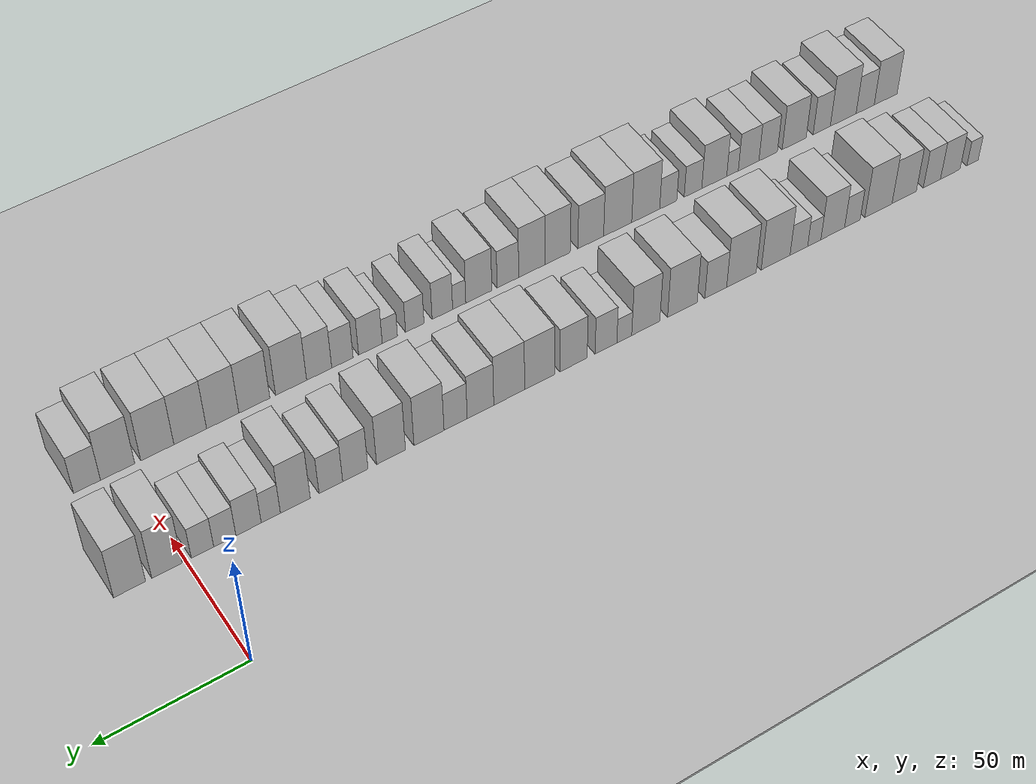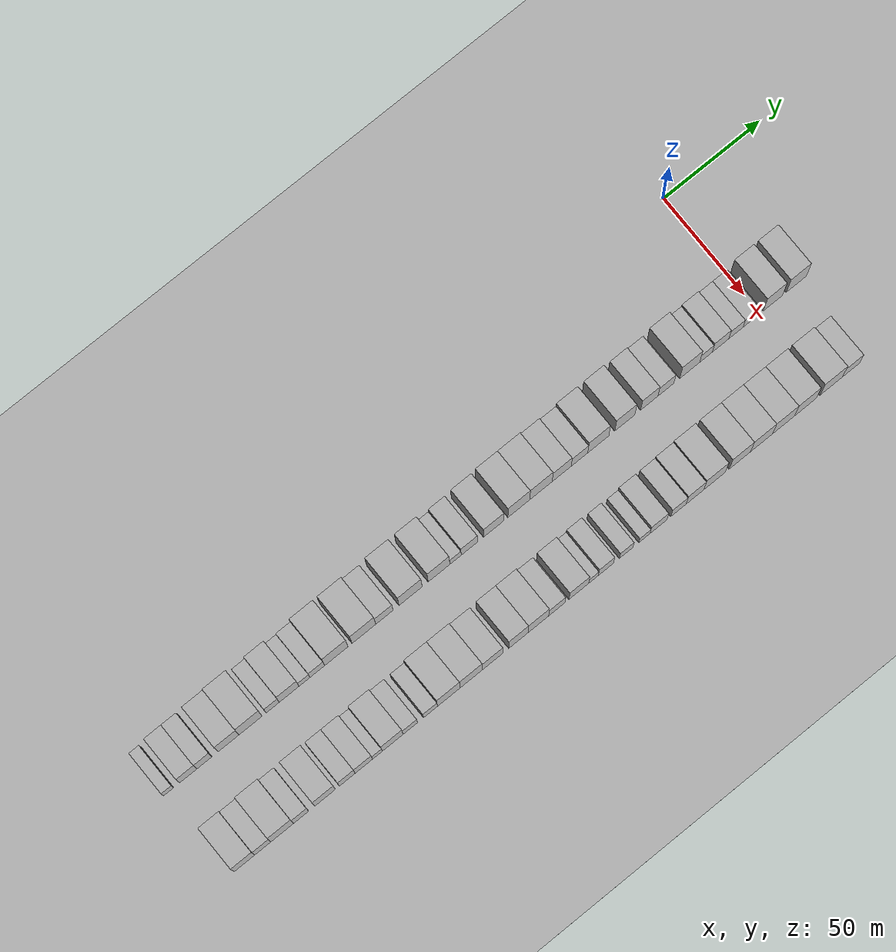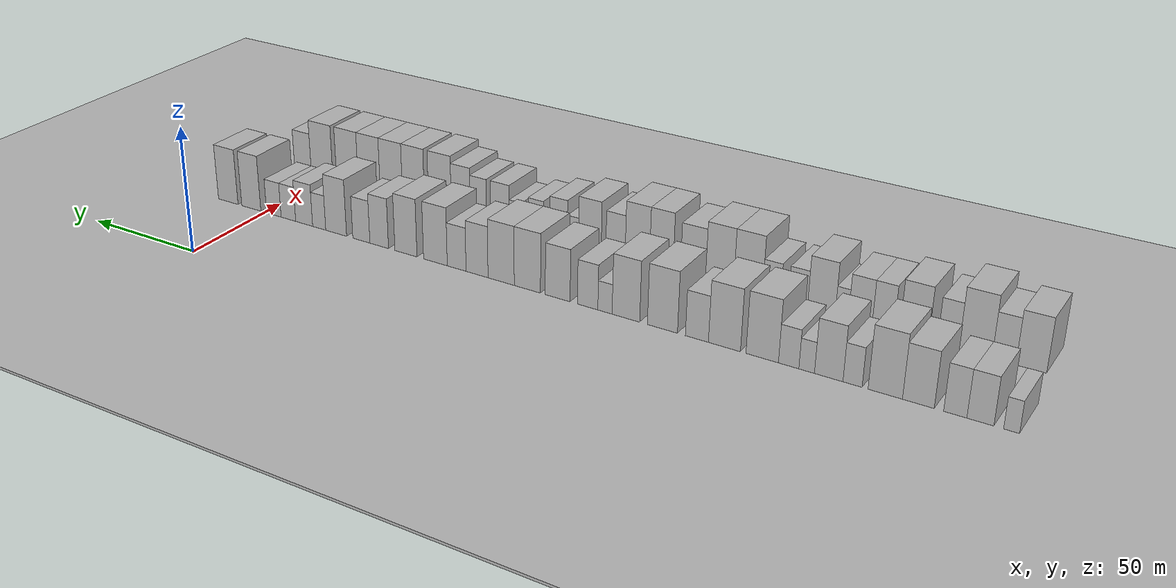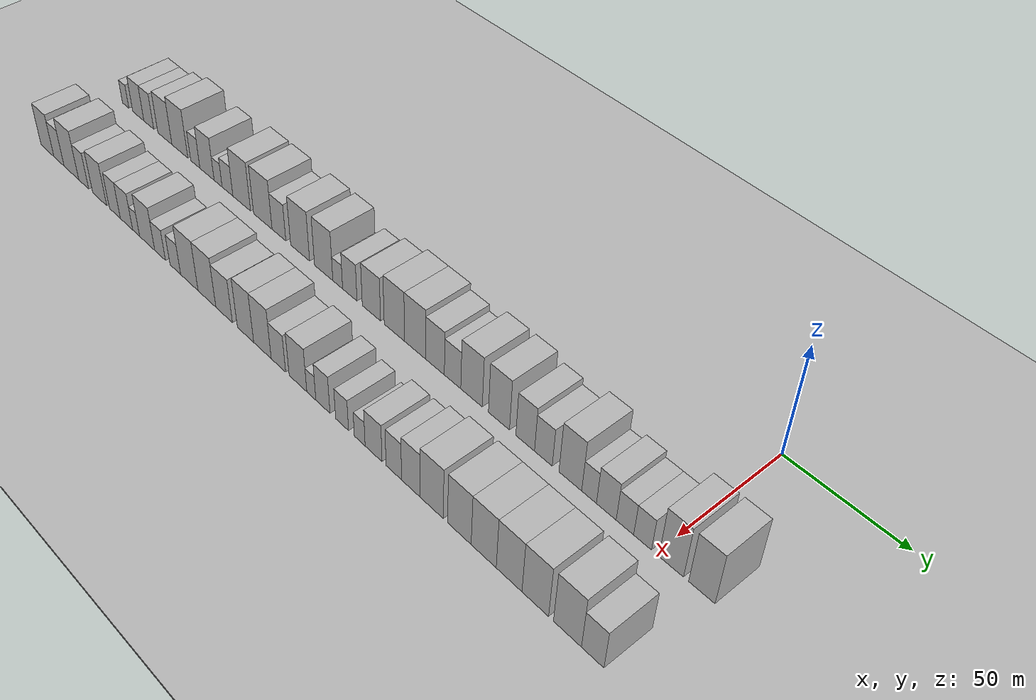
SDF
<sdf version="1.6">
 <world name="default">
  <include><name>ground_plane_1</name><uri>model://HANNAS_ground_plane</uri></include>
  <include>
   <name>ground_plane_2</name>
   <uri>model://HANNAS_ground_plane</uri>
   <pose>100 0 0  0 0 0</pose>
  </include>
  <model name="building_1">
   <static>1</static>
   <pose>50.0000 -297.5331 0 0.000000 0.000000 0.000000</pose>
   <link name="link">
    <pose>0 0 6.00 0 0 0</pose>
    <collision name="collision"><geometry><box><size>20.0000 4.9339 12.0000</size></box></geometry></collision>
    <visual name="visual">
     <cast_shadows>0</cast_shadows>
     <geometry><box><size>20.0000 4.9339 12.0000</size></box></geometry>
     <material>
      <script>
       <uri>model://HANNAS_wall/materials/scripts</uri>
       <uri>model://HANNAS_wall/materials/textures</uri>
       <name>vrc/HANNAS_wall</name>
      </script>
     </material>
    </visual>
   </link>
  </model>
  <model name="building_2">
   <static>1</static>
   <pose>50.0000 -287.8337 0 0.000000 0.000000 0.000000</pose>
   <link name="link">
    <pose>0 0 9.00 0 0 0</pose>
    <collision name="collision"><geometry><box><size>20.0000 8.4648 18.0000</size></box></geometry></collision>
    <visual name="visual">
     <cast_shadows>0</cast_shadows>
     <geometry><box><size>20.0000 8.4648 18.0000</size></box></geometry>
     <material>
      <script>
       <uri>model://HANNAS_wall/materials/scripts</uri>
       <uri>model://HANNAS_wall/materials/textures</uri>
       <name>vrc/HANNAS_wall</name>
      </script>
     </material>
    </visual>
   </link>
  </model>
  <model name="building_3">
   <static>1</static>
   <pose>50.0000 -279.8977 0 0.000000 0.000000 0.000000</pose>
   <link name="link">
    <pose>0 0 9.00 0 0 0</pose>
    <collision name="collision"><geometry><box><size>20.0000 7.4073 18.0000</size></box></geometry></collision>
    <visual name="visual">
     <cast_shadows>0</cast_shadows>
     <geometry><box><size>20.0000 7.4073 18.0000</size></box></geometry>
     <material>
      <script>
       <uri>model://HANNAS_wall/materials/scripts</uri>
       <uri>model://HANNAS_wall/materials/textures</uri>
       <name>vrc/HANNAS_wall</name>
      </script>
     </material>
    </visual>
   </link>
  </model>
  <model name="building_4">
   <static>1</static>
   <pose>50.0000 -268.0133 0 0.000000 0.000000 0.000000</pose>
   <link name="link">
    <pose>0 0 10.50 0 0 0</pose>
    <collision name="collision"><geometry><box><size>20.0000 10.3615 21.0000</size></box></geometry></collision>
    <visual name="visual">
     <cast_shadows>0</cast_shadows>
     <geometry><box><size>20.0000 10.3615 21.0000</size></box></geometry>
     <material>
      <script>
       <uri>model://HANNAS_wall/materials/scripts</uri>
       <uri>model://HANNAS_wall/materials/textures</uri>
       <name>vrc/HANNAS_wall</name>
      </script>
     </material>
    </visual>
   </link>
  </model>
  <model name="building_5">
   <static>1</static>
   <pose>50.0000 -257.1095 0 0.000000 0.000000 0.000000</pose>
   <link name="link">
    <pose>0 0 12.00 0 0 0</pose>
    <collision name="collision"><geometry><box><size>20.0000 11.4461 24.0000</size></box></geometry></collision>
    <visual name="visual">
     <cast_shadows>0</cast_shadows>
     <geometry><box><size>20.0000 11.4461 24.0000</size></box></geometry>
     <material>
      <script>
       <uri>model://HANNAS_wall/materials/scripts</uri>
       <uri>model://HANNAS_wall/materials/textures</uri>
       <name>vrc/HANNAS_wall</name>
      </script>
     </material>
    </visual>
   </link>
  </model>
  <model name="building_6">
   <static>1</static>
   <pose>50.0000 -246.1366 0 0.000000 0.000000 0.000000</pose>
   <link name="link">
    <pose>0 0 7.50 0 0 0</pose>
    <collision name="collision"><geometry><box><size>20.0000 6.4996 15.0000</size></box></geometry></collision>
    <visual name="visual">
     <cast_shadows>0</cast_shadows>
     <geometry><box><size>20.0000 6.4996 15.0000</size></box></geometry>
     <material>
      <script>
       <uri>model://HANNAS_wall/materials/scripts</uri>
       <uri>model://HANNAS_wall/materials/textures</uri>
       <name>vrc/HANNAS_wall</name>
      </script>
     </material>
    </visual>
   </link>
  </model>
  <model name="building_7">
   <static>1</static>
   <pose>50.0000 -237.9815 0 0.000000 0.000000 0.000000</pose>
   <link name="link">
    <pose>0 0 10.50 0 0 0</pose>
    <collision name="collision"><geometry><box><size>20.0000 9.8106 21.0000</size></box></geometry></collision>
    <visual name="visual">
     <cast_shadows>0</cast_shadows>
     <geometry><box><size>20.0000 9.8106 21.0000</size></box></geometry>
     <material>
      <script>
       <uri>model://HANNAS_wall/materials/scripts</uri>
       <uri>model://HANNAS_wall/materials/textures</uri>
       <name>vrc/HANNAS_wall</name>
      </script>
     </material>
    </visual>
   </link>
  </model>
  <model name="building_8">
   <static>1</static>
   <pose>50.0000 -230.3521 0 0.000000 0.000000 0.000000</pose>
   <link name="link">
    <pose>0 0 6.00 0 0 0</pose>
    <collision name="collision"><geometry><box><size>20.0000 5.4483 12.0000</size></box></geometry></collision>
    <visual name="visual">
     <cast_shadows>0</cast_shadows>
     <geometry><box><size>20.0000 5.4483 12.0000</size></box></geometry>
     <material>
      <script>
       <uri>model://HANNAS_wall/materials/scripts</uri>
       <uri>model://HANNAS_wall/materials/textures</uri>
       <name>vrc/HANNAS_wall</name>
      </script>
     </material>
    </visual>
   </link>
  </model>
  <model name="building_9">
   <static>1</static>
   <pose>50.0000 -224.0166 0 0.000000 0.000000 0.000000</pose>
   <link name="link">
    <pose>0 0 7.50 0 0 0</pose>
    <collision name="collision"><geometry><box><size>20.0000 7.2227 15.0000</size></box></geometry></collision>
    <visual name="visual">
     <cast_shadows>0</cast_shadows>
     <geometry><box><size>20.0000 7.2227 15.0000</size></box></geometry>
     <material>
      <script>
       <uri>model://HANNAS_wall/materials/scripts</uri>
       <uri>model://HANNAS_wall/materials/textures</uri>
       <name>vrc/HANNAS_wall</name>
      </script>
     </material>
    </visual>
   </link>
  </model>
  <model name="building_10">
   <static>1</static>
   <pose>50.0000 -214.5583 0 0.000000 0.000000 0.000000</pose>
   <link name="link">
    <pose>0 0 12.00 0 0 0</pose>
    <collision name="collision"><geometry><box><size>20.0000 11.6939 24.0000</size></box></geometry></collision>
    <visual name="visual">
     <cast_shadows>0</cast_shadows>
     <geometry><box><size>20.0000 11.6939 24.0000</size></box></geometry>
     <material>
      <script>
       <uri>model://HANNAS_wall/materials/scripts</uri>
       <uri>model://HANNAS_wall/materials/textures</uri>
       <name>vrc/HANNAS_wall</name>
      </script>
     </material>
    </visual>
   </link>
  </model>
  <model name="building_11">
   <static>1</static>
   <pose>50.0000 -200.7927 0 0.000000 0.000000 0.000000</pose>
   <link name="link">
    <pose>0 0 12.00 0 0 0</pose>
    <collision name="collision"><geometry><box><size>20.0000 11.8374 24.0000</size></box></geometry></collision>
    <visual name="visual">
     <cast_shadows>0</cast_shadows>
     <geometry><box><size>20.0000 11.8374 24.0000</size></box></geometry>
     <material>
      <script>
       <uri>model://HANNAS_wall/materials/scripts</uri>
       <uri>model://HANNAS_wall/materials/textures</uri>
       <name>vrc/HANNAS_wall</name>
      </script>
     </material>
    </visual>
   </link>
  </model>
  <model name="building_12">
   <static>1</static>
   <pose>50.0000 -190.5478 0 0.000000 0.000000 0.000000</pose>
   <link name="link">
    <pose>0 0 9.00 0 0 0</pose>
    <collision name="collision"><geometry><box><size>20.0000 8.6524 18.0000</size></box></geometry></collision>
    <visual name="visual">
     <cast_shadows>0</cast_shadows>
     <geometry><box><size>20.0000 8.6524 18.0000</size></box></geometry>
     <material>
      <script>
       <uri>model://HANNAS_wall/materials/scripts</uri>
       <uri>model://HANNAS_wall/materials/textures</uri>
       <name>vrc/HANNAS_wall</name>
      </script>
     </material>
    </visual>
   </link>
  </model>
  <model name="building_13">
   <static>1</static>
   <pose>50.0000 -177.4273 0 0.000000 0.000000 0.000000</pose>
   <link name="link">
    <pose>0 0 12.00 0 0 0</pose>
    <collision name="collision"><geometry><box><size>20.0000 11.5886 24.0000</size></box></geometry></collision>
    <visual name="visual">
     <cast_shadows>0</cast_shadows>
     <geometry><box><size>20.0000 11.5886 24.0000</size></box></geometry>
     <material>
      <script>
       <uri>model://HANNAS_wall/materials/scripts</uri>
       <uri>model://HANNAS_wall/materials/textures</uri>
       <name>vrc/HANNAS_wall</name>
      </script>
     </material>
    </visual>
   </link>
  </model>
  <model name="building_14">
   <static>1</static>
   <pose>50.0000 -163.1958 0 0.000000 0.000000 0.000000</pose>
   <link name="link">
    <pose>0 0 12.00 0 0 0</pose>
    <collision name="collision"><geometry><box><size>20.0000 10.8744 24.0000</size></box></geometry></collision>
    <visual name="visual">
     <cast_shadows>0</cast_shadows>
     <geometry><box><size>20.0000 10.8744 24.0000</size></box></geometry>
     <material>
      <script>
       <uri>model://HANNAS_wall/materials/scripts</uri>
       <uri>model://HANNAS_wall/materials/textures</uri>
       <name>vrc/HANNAS_wall</name>
      </script>
     </material>
    </visual>
   </link>
  </model>
  <model name="building_15">
   <static>1</static>
   <pose>50.0000 -154.9076 0 0.000000 0.000000 0.000000</pose>
   <link name="link">
    <pose>0 0 6.00 0 0 0</pose>
    <collision name="collision"><geometry><box><size>20.0000 5.7019 12.0000</size></box></geometry></collision>
    <visual name="visual">
     <cast_shadows>0</cast_shadows>
     <geometry><box><size>20.0000 5.7019 12.0000</size></box></geometry>
     <material>
      <script>
       <uri>model://HANNAS_wall/materials/scripts</uri>
       <uri>model://HANNAS_wall/materials/textures</uri>
       <name>vrc/HANNAS_wall</name>
      </script>
     </material>
    </visual>
   </link>
  </model>
  <model name="building_16">
   <static>1</static>
   <pose>50.0000 -147.9186 0 0.000000 0.000000 0.000000</pose>
   <link name="link">
    <pose>0 0 9.00 0 0 0</pose>
    <collision name="collision"><geometry><box><size>20.0000 8.2761 18.0000</size></box></geometry></collision>
    <visual name="visual">
     <cast_shadows>0</cast_shadows>
     <geometry><box><size>20.0000 8.2761 18.0000</size></box></geometry>
     <material>
      <script>
       <uri>model://HANNAS_wall/materials/scripts</uri>
       <uri>model://HANNAS_wall/materials/textures</uri>
       <name>vrc/HANNAS_wall</name>
      </script>
     </material>
    </visual>
   </link>
  </model>
  <model name="building_17">
   <static>1</static>
   <pose>50.0000 -135.6512 0 0.000000 0.000000 0.000000</pose>
   <link name="link">
    <pose>0 0 10.50 0 0 0</pose>
    <collision name="collision"><geometry><box><size>20.0000 10.2588 21.0000</size></box></geometry></collision>
    <visual name="visual">
     <cast_shadows>0</cast_shadows>
     <geometry><box><size>20.0000 10.2588 21.0000</size></box></geometry>
     <material>
      <script>
       <uri>model://HANNAS_wall/materials/scripts</uri>
       <uri>model://HANNAS_wall/materials/textures</uri>
       <name>vrc/HANNAS_wall</name>
      </script>
     </material>
    </visual>
   </link>
  </model>
  <model name="building_18">
   <static>1</static>
   <pose>50.0000 -122.9784 0 0.000000 0.000000 0.000000</pose>
   <link name="link">
    <pose>0 0 12.00 0 0 0</pose>
    <collision name="collision"><geometry><box><size>20.0000 11.0869 24.0000</size></box></geometry></collision>
    <visual name="visual">
     <cast_shadows>0</cast_shadows>
     <geometry><box><size>20.0000 11.0869 24.0000</size></box></geometry>
     <material>
      <script>
       <uri>model://HANNAS_wall/materials/scripts</uri>
       <uri>model://HANNAS_wall/materials/textures</uri>
       <name>vrc/HANNAS_wall</name>
      </script>
     </material>
    </visual>
   </link>
  </model>
  <model name="building_19">
   <static>1</static>
   <pose>50.0000 -111.7870 0 0.000000 0.000000 0.000000</pose>
   <link name="link">
    <pose>0 0 12.00 0 0 0</pose>
    <collision name="collision"><geometry><box><size>20.0000 11.2959 24.0000</size></box></geometry></collision>
    <visual name="visual">
     <cast_shadows>0</cast_shadows>
     <geometry><box><size>20.0000 11.2959 24.0000</size></box></geometry>
     <material>
      <script>
       <uri>model://HANNAS_wall/materials/scripts</uri>
       <uri>model://HANNAS_wall/materials/textures</uri>
       <name>vrc/HANNAS_wall</name>
      </script>
     </material>
    </visual>
   </link>
  </model>
  <model name="building_20">
   <static>1</static>
   <pose>50.0000 -101.3249 0 0.000000 0.000000 0.000000</pose>
   <link name="link">
    <pose>0 0 10.50 0 0 0</pose>
    <collision name="collision"><geometry><box><size>20.0000 9.6283 21.0000</size></box></geometry></collision>
    <visual name="visual">
     <cast_shadows>0</cast_shadows>
     <geometry><box><size>20.0000 9.6283 21.0000</size></box></geometry>
     <material>
      <script>
       <uri>model://HANNAS_wall/materials/scripts</uri>
       <uri>model://HANNAS_wall/materials/textures</uri>
       <name>vrc/HANNAS_wall</name>
      </script>
     </material>
    </visual>
   </link>
  </model>
  <model name="building_21">
   <static>1</static>
   <pose>50.0000 -92.3364 0 0.000000 0.000000 0.000000</pose>
   <link name="link">
    <pose>0 0 9.00 0 0 0</pose>
    <collision name="collision"><geometry><box><size>20.0000 8.3488 18.0000</size></box></geometry></collision>
    <visual name="visual">
     <cast_shadows>0</cast_shadows>
     <geometry><box><size>20.0000 8.3488 18.0000</size></box></geometry>
     <material>
      <script>
       <uri>model://HANNAS_wall/materials/scripts</uri>
       <uri>model://HANNAS_wall/materials/textures</uri>
       <name>vrc/HANNAS_wall</name>
      </script>
     </material>
    </visual>
   </link>
  </model>
  <model name="building_22">
   <static>1</static>
   <pose>50.0000 -82.8064 0 0.000000 0.000000 0.000000</pose>
   <link name="link">
    <pose>0 0 12.00 0 0 0</pose>
    <collision name="collision"><geometry><box><size>20.0000 10.7113 24.0000</size></box></geometry></collision>
    <visual name="visual">
     <cast_shadows>0</cast_shadows>
     <geometry><box><size>20.0000 10.7113 24.0000</size></box></geometry>
     <material>
      <script>
       <uri>model://HANNAS_wall/materials/scripts</uri>
       <uri>model://HANNAS_wall/materials/textures</uri>
       <name>vrc/HANNAS_wall</name>
      </script>
     </material>
    </visual>
   </link>
  </model>
  <model name="building_23">
   <static>1</static>
   <pose>50.0000 -69.3587 0 0.000000 0.000000 0.000000</pose>
   <link name="link">
    <pose>0 0 12.00 0 0 0</pose>
    <collision name="collision"><geometry><box><size>20.0000 10.1841 24.0000</size></box></geometry></collision>
    <visual name="visual">
     <cast_shadows>0</cast_shadows>
     <geometry><box><size>20.0000 10.1841 24.0000</size></box></geometry>
     <material>
      <script>
       <uri>model://HANNAS_wall/materials/scripts</uri>
       <uri>model://HANNAS_wall/materials/textures</uri>
       <name>vrc/HANNAS_wall</name>
      </script>
     </material>
    </visual>
   </link>
  </model>
  <model name="building_24">
   <static>1</static>
   <pose>50.0000 -56.8853 0 0.000000 0.000000 0.000000</pose>
   <link name="link">
    <pose>0 0 10.50 0 0 0</pose>
    <collision name="collision"><geometry><box><size>20.0000 8.7627 21.0000</size></box></geometry></collision>
    <visual name="visual">
     <cast_shadows>0</cast_shadows>
     <geometry><box><size>20.0000 8.7627 21.0000</size></box></geometry>
     <material>
      <script>
       <uri>model://HANNAS_wall/materials/scripts</uri>
       <uri>model://HANNAS_wall/materials/textures</uri>
       <name>vrc/HANNAS_wall</name>
      </script>
     </material>
    </visual>
   </link>
  </model>
  <model name="building_25">
   <static>1</static>
   <pose>50.0000 -48.4280 0 0.000000 0.000000 0.000000</pose>
   <link name="link">
    <pose>0 0 9.00 0 0 0</pose>
    <collision name="collision"><geometry><box><size>20.0000 8.1518 18.0000</size></box></geometry></collision>
    <visual name="visual">
     <cast_shadows>0</cast_shadows>
     <geometry><box><size>20.0000 8.1518 18.0000</size></box></geometry>
     <material>
      <script>
       <uri>model://HANNAS_wall/materials/scripts</uri>
       <uri>model://HANNAS_wall/materials/textures</uri>
       <name>vrc/HANNAS_wall</name>
      </script>
     </material>
    </visual>
   </link>
  </model>
  <model name="building_26">
   <static>1</static>
   <pose>50.0000 -36.2777 0 0.000000 0.000000 0.000000</pose>
   <link name="link">
    <pose>0 0 12.00 0 0 0</pose>
    <collision name="collision"><geometry><box><size>20.0000 10.1488 24.0000</size></box></geometry></collision>
    <visual name="visual">
     <cast_shadows>0</cast_shadows>
     <geometry><box><size>20.0000 10.1488 24.0000</size></box></geometry>
     <material>
      <script>
       <uri>model://HANNAS_wall/materials/scripts</uri>
       <uri>model://HANNAS_wall/materials/textures</uri>
       <name>vrc/HANNAS_wall</name>
      </script>
     </material>
    </visual>
   </link>
  </model>
  <model name="building_27">
   <static>1</static>
   <pose>50.0000 -27.9706 0 0.000000 0.000000 0.000000</pose>
   <link name="link">
    <pose>0 0 7.50 0 0 0</pose>
    <collision name="collision"><geometry><box><size>20.0000 6.4655 15.0000</size></box></geometry></collision>
    <visual name="visual">
     <cast_shadows>0</cast_shadows>
     <geometry><box><size>20.0000 6.4655 15.0000</size></box></geometry>
     <material>
      <script>
       <uri>model://HANNAS_wall/materials/scripts</uri>
       <uri>model://HANNAS_wall/materials/textures</uri>
       <name>vrc/HANNAS_wall</name>
      </script>
     </material>
    </visual>
   </link>
  </model>
  <model name="building_28">
   <static>1</static>
   <pose>50.0000 -20.5043 0 0.000000 0.000000 0.000000</pose>
   <link name="link">
    <pose>0 0 9.00 0 0 0</pose>
    <collision name="collision"><geometry><box><size>20.0000 8.4670 18.0000</size></box></geometry></collision>
    <visual name="visual">
     <cast_shadows>0</cast_shadows>
     <geometry><box><size>20.0000 8.4670 18.0000</size></box></geometry>
     <material>
      <script>
       <uri>model://HANNAS_wall/materials/scripts</uri>
       <uri>model://HANNAS_wall/materials/textures</uri>
       <name>vrc/HANNAS_wall</name>
      </script>
     </material>
    </visual>
   </link>
  </model>
  <model name="building_29">
   <static>1</static>
   <pose>50.0000 -12.5937 0 0.000000 0.000000 0.000000</pose>
   <link name="link">
    <pose>0 0 7.50 0 0 0</pose>
    <collision name="collision"><geometry><box><size>20.0000 7.3543 15.0000</size></box></geometry></collision>
    <visual name="visual">
     <cast_shadows>0</cast_shadows>
     <geometry><box><size>20.0000 7.3543 15.0000</size></box></geometry>
     <material>
      <script>
       <uri>model://HANNAS_wall/materials/scripts</uri>
       <uri>model://HANNAS_wall/materials/textures</uri>
       <name>vrc/HANNAS_wall</name>
      </script>
     </material>
    </visual>
   </link>
  </model>
  <model name="building_30">
   <static>1</static>
   <pose>50.0000 -5.2264 0 0.000000 0.000000 0.000000</pose>
   <link name="link">
    <pose>0 0 7.50 0 0 0</pose>
    <collision name="collision"><geometry><box><size>20.0000 7.3801 15.0000</size></box></geometry></collision>
    <visual name="visual">
     <cast_shadows>0</cast_shadows>
     <geometry><box><size>20.0000 7.3801 15.0000</size></box></geometry>
     <material>
      <script>
       <uri>model://HANNAS_wall/materials/scripts</uri>
       <uri>model://HANNAS_wall/materials/textures</uri>
       <name>vrc/HANNAS_wall</name>
      </script>
     </material>
    </visual>
   </link>
  </model>
  <model name="building_31">
   <static>1</static>
   <pose>50.0000 6.4105 0 0.000000 0.000000 0.000000</pose>
   <link name="link">
    <pose>0 0 12.00 0 0 0</pose>
    <collision name="collision"><geometry><box><size>20.0000 9.8938 24.0000</size></box></geometry></collision>
    <visual name="visual">
     <cast_shadows>0</cast_shadows>
     <geometry><box><size>20.0000 9.8938 24.0000</size></box></geometry>
     <material>
      <script>
       <uri>model://HANNAS_wall/materials/scripts</uri>
       <uri>model://HANNAS_wall/materials/textures</uri>
       <name>vrc/HANNAS_wall</name>
      </script>
     </material>
    </visual>
   </link>
  </model>
  <model name="building_32">
   <static>1</static>
   <pose>50.0000 18.5076 0 0.000000 0.000000 0.000000</pose>
   <link name="link">
    <pose>0 0 12.00 0 0 0</pose>
    <collision name="collision"><geometry><box><size>20.0000 10.3004 24.0000</size></box></geometry></collision>
    <visual name="visual">
     <cast_shadows>0</cast_shadows>
     <geometry><box><size>20.0000 10.3004 24.0000</size></box></geometry>
     <material>
      <script>
       <uri>model://HANNAS_wall/materials/scripts</uri>
       <uri>model://HANNAS_wall/materials/textures</uri>
       <name>vrc/HANNAS_wall</name>
      </script>
     </material>
    </visual>
   </link>
  </model>
  <model name="building_66">
   <static>1</static>
   <pose>90.0000 -291.9451 0 0.000000 0.000000 0.000000</pose>
   <link name="link">
    <pose>0 0 10.50 0 0 0</pose>
    <collision name="collision"><geometry><box><size>20.0000 10.1097 21.0000</size></box></geometry></collision>
    <visual name="visual">
     <cast_shadows>0</cast_shadows>
     <geometry><box><size>20.0000 10.1097 21.0000</size></box></geometry>
     <material>
      <script>
       <uri>model://HANNAS_wall/materials/scripts</uri>
       <uri>model://HANNAS_wall/materials/textures</uri>
       <name>vrc/HANNAS_wall</name>
      </script>
     </material>
    </visual>
   </link>
  </model>
  <model name="building_67">
   <static>1</static>
   <pose>90.0000 -282.9284 0 0.000000 0.000000 0.000000</pose>
   <link name="link">
    <pose>0 0 9.00 0 0 0</pose>
    <collision name="collision"><geometry><box><size>20.0000 7.9237 18.0000</size></box></geometry></collision>
    <visual name="visual">
     <cast_shadows>0</cast_shadows>
     <geometry><box><size>20.0000 7.9237 18.0000</size></box></geometry>
     <material>
      <script>
       <uri>model://HANNAS_wall/materials/scripts</uri>
       <uri>model://HANNAS_wall/materials/textures</uri>
       <name>vrc/HANNAS_wall</name>
      </script>
     </material>
    </visual>
   </link>
  </model>
  <model name="building_68">
   <static>1</static>
   <pose>90.0000 -273.3744 0 0.000000 0.000000 0.000000</pose>
   <link name="link">
    <pose>0 0 12.00 0 0 0</pose>
    <collision name="collision"><geometry><box><size>20.0000 11.1841 24.0000</size></box></geometry></collision>
    <visual name="visual">
     <cast_shadows>0</cast_shadows>
     <geometry><box><size>20.0000 11.1841 24.0000</size></box></geometry>
     <material>
      <script>
       <uri>model://HANNAS_wall/materials/scripts</uri>
       <uri>model://HANNAS_wall/materials/textures</uri>
       <name>vrc/HANNAS_wall</name>
      </script>
     </material>
    </visual>
   </link>
  </model>
  <model name="building_69">
   <static>1</static>
   <pose>90.0000 -264.0780 0 0.000000 0.000000 0.000000</pose>
   <link name="link">
    <pose>0 0 9.00 0 0 0</pose>
    <collision name="collision"><geometry><box><size>20.0000 7.4088 18.0000</size></box></geometry></collision>
    <visual name="visual">
     <cast_shadows>0</cast_shadows>
     <geometry><box><size>20.0000 7.4088 18.0000</size></box></geometry>
     <material>
      <script>
       <uri>model://HANNAS_wall/materials/scripts</uri>
       <uri>model://HANNAS_wall/materials/textures</uri>
       <name>vrc/HANNAS_wall</name>
      </script>
     </material>
    </visual>
   </link>
  </model>
  <model name="building_70">
   <static>1</static>
   <pose>90.0000 -252.2582 0 0.000000 0.000000 0.000000</pose>
   <link name="link">
    <pose>0 0 10.50 0 0 0</pose>
    <collision name="collision"><geometry><box><size>20.0000 10.2306 21.0000</size></box></geometry></collision>
    <visual name="visual">
     <cast_shadows>0</cast_shadows>
     <geometry><box><size>20.0000 10.2306 21.0000</size></box></geometry>
     <material>
      <script>
       <uri>model://HANNAS_wall/materials/scripts</uri>
       <uri>model://HANNAS_wall/materials/textures</uri>
       <name>vrc/HANNAS_wall</name>
      </script>
     </material>
    </visual>
   </link>
  </model>
  <model name="building_71">
   <static>1</static>
   <pose>90.0000 -241.2376 0 0.000000 0.000000 0.000000</pose>
   <link name="link">
    <pose>0 0 9.00 0 0 0</pose>
    <collision name="collision"><geometry><box><size>20.0000 7.8106 18.0000</size></box></geometry></collision>
    <visual name="visual">
     <cast_shadows>0</cast_shadows>
     <geometry><box><size>20.0000 7.8106 18.0000</size></box></geometry>
     <material>
      <script>
       <uri>model://HANNAS_wall/materials/scripts</uri>
       <uri>model://HANNAS_wall/materials/textures</uri>
       <name>vrc/HANNAS_wall</name>
      </script>
     </material>
    </visual>
   </link>
  </model>
  <model name="building_72">
   <static>1</static>
   <pose>90.0000 -233.0132 0 0.000000 0.000000 0.000000</pose>
   <link name="link">
    <pose>0 0 9.00 0 0 0</pose>
    <collision name="collision"><geometry><box><size>20.0000 8.6383 18.0000</size></box></geometry></collision>
    <visual name="visual">
     <cast_shadows>0</cast_shadows>
     <geometry><box><size>20.0000 8.6383 18.0000</size></box></geometry>
     <material>
      <script>
       <uri>model://HANNAS_wall/materials/scripts</uri>
       <uri>model://HANNAS_wall/materials/textures</uri>
       <name>vrc/HANNAS_wall</name>
      </script>
     </material>
    </visual>
   </link>
  </model>
  <model name="building_73">
   <static>1</static>
   <pose>90.0000 -226.2843 0 0.000000 0.000000 0.000000</pose>
   <link name="link">
    <pose>0 0 6.00 0 0 0</pose>
    <collision name="collision"><geometry><box><size>20.0000 4.8194 12.0000</size></box></geometry></collision>
    <visual name="visual">
     <cast_shadows>0</cast_shadows>
     <geometry><box><size>20.0000 4.8194 12.0000</size></box></geometry>
     <material>
      <script>
       <uri>model://HANNAS_wall/materials/scripts</uri>
       <uri>model://HANNAS_wall/materials/textures</uri>
       <name>vrc/HANNAS_wall</name>
      </script>
     </material>
    </visual>
   </link>
  </model>
  <model name="building_74">
   <static>1</static>
   <pose>90.0000 -218.7127 0 0.000000 0.000000 0.000000</pose>
   <link name="link">
    <pose>0 0 10.50 0 0 0</pose>
    <collision name="collision"><geometry><box><size>20.0000 10.3237 21.0000</size></box></geometry></collision>
    <visual name="visual">
     <cast_shadows>0</cast_shadows>
     <geometry><box><size>20.0000 10.3237 21.0000</size></box></geometry>
     <material>
      <script>
       <uri>model://HANNAS_wall/materials/scripts</uri>
       <uri>model://HANNAS_wall/materials/textures</uri>
       <name>vrc/HANNAS_wall</name>
      </script>
     </material>
    </visual>
   </link>
  </model>
  <model name="building_75">
   <static>1</static>
   <pose>90.0000 -209.9552 0 0.000000 0.000000 0.000000</pose>
   <link name="link">
    <pose>0 0 7.50 0 0 0</pose>
    <collision name="collision"><geometry><box><size>20.0000 7.1914 15.0000</size></box></geometry></collision>
    <visual name="visual">
     <cast_shadows>0</cast_shadows>
     <geometry><box><size>20.0000 7.1914 15.0000</size></box></geometry>
     <material>
      <script>
       <uri>model://HANNAS_wall/materials/scripts</uri>
       <uri>model://HANNAS_wall/materials/textures</uri>
       <name>vrc/HANNAS_wall</name>
      </script>
     </material>
    </visual>
   </link>
  </model>
  <model name="building_76">
   <static>1</static>
   <pose>90.0000 -199.8760 0 0.000000 0.000000 0.000000</pose>
   <link name="link">
    <pose>0 0 7.50 0 0 0</pose>
    <collision name="collision"><geometry><box><size>20.0000 6.9670 15.0000</size></box></geometry></collision>
    <visual name="visual">
     <cast_shadows>0</cast_shadows>
     <geometry><box><size>20.0000 6.9670 15.0000</size></box></geometry>
     <material>
      <script>
       <uri>model://HANNAS_wall/materials/scripts</uri>
       <uri>model://HANNAS_wall/materials/textures</uri>
       <name>vrc/HANNAS_wall</name>
      </script>
     </material>
    </visual>
   </link>
  </model>
  <model name="building_77">
   <static>1</static>
   <pose>90.0000 -190.7588 0 0.000000 0.000000 0.000000</pose>
   <link name="link">
    <pose>0 0 12.00 0 0 0</pose>
    <collision name="collision"><geometry><box><size>20.0000 11.2673 24.0000</size></box></geometry></collision>
    <visual name="visual">
     <cast_shadows>0</cast_shadows>
     <geometry><box><size>20.0000 11.2673 24.0000</size></box></geometry>
     <material>
      <script>
       <uri>model://HANNAS_wall/materials/scripts</uri>
       <uri>model://HANNAS_wall/materials/textures</uri>
       <name>vrc/HANNAS_wall</name>
      </script>
     </material>
    </visual>
   </link>
  </model>
  <model name="building_78">
   <static>1</static>
   <pose>90.0000 -179.5299 0 0.000000 0.000000 0.000000</pose>
   <link name="link">
    <pose>0 0 12.00 0 0 0</pose>
    <collision name="collision"><geometry><box><size>20.0000 11.1906 24.0000</size></box></geometry></collision>
    <visual name="visual">
     <cast_shadows>0</cast_shadows>
     <geometry><box><size>20.0000 11.1906 24.0000</size></box></geometry>
     <material>
      <script>
       <uri>model://HANNAS_wall/materials/scripts</uri>
       <uri>model://HANNAS_wall/materials/textures</uri>
       <name>vrc/HANNAS_wall</name>
      </script>
     </material>
    </visual>
   </link>
  </model>
  <model name="building_79">
   <static>1</static>
   <pose>90.0000 -168.8493 0 0.000000 0.000000 0.000000</pose>
   <link name="link">
    <pose>0 0 10.50 0 0 0</pose>
    <collision name="collision"><geometry><box><size>20.0000 10.1705 21.0000</size></box></geometry></collision>
    <visual name="visual">
     <cast_shadows>0</cast_shadows>
     <geometry><box><size>20.0000 10.1705 21.0000</size></box></geometry>
     <material>
      <script>
       <uri>model://HANNAS_wall/materials/scripts</uri>
       <uri>model://HANNAS_wall/materials/textures</uri>
       <name>vrc/HANNAS_wall</name>
      </script>
     </material>
    </visual>
   </link>
  </model>
  <model name="building_80">
   <static>1</static>
   <pose>90.0000 -155.8895 0 0.000000 0.000000 0.000000</pose>
   <link name="link">
    <pose>0 0 12.00 0 0 0</pose>
    <collision name="collision"><geometry><box><size>20.0000 9.7491 24.0000</size></box></geometry></collision>
    <visual name="visual">
     <cast_shadows>0</cast_shadows>
     <geometry><box><size>20.0000 9.7491 24.0000</size></box></geometry>
     <material>
      <script>
       <uri>model://HANNAS_wall/materials/scripts</uri>
       <uri>model://HANNAS_wall/materials/textures</uri>
       <name>vrc/HANNAS_wall</name>
      </script>
     </material>
    </visual>
   </link>
  </model>
  <model name="building_81">
   <static>1</static>
   <pose>90.0000 -145.8868 0 0.000000 0.000000 0.000000</pose>
   <link name="link">
    <pose>0 0 12.00 0 0 0</pose>
    <collision name="collision"><geometry><box><size>20.0000 10.2561 24.0000</size></box></geometry></collision>
    <visual name="visual">
     <cast_shadows>0</cast_shadows>
     <geometry><box><size>20.0000 10.2561 24.0000</size></box></geometry>
     <material>
      <script>
       <uri>model://HANNAS_wall/materials/scripts</uri>
       <uri>model://HANNAS_wall/materials/textures</uri>
       <name>vrc/HANNAS_wall</name>
      </script>
     </material>
    </visual>
   </link>
  </model>
  <model name="building_82">
   <static>1</static>
   <pose>90.0000 -136.6373 0 0.000000 0.000000 0.000000</pose>
   <link name="link">
    <pose>0 0 9.00 0 0 0</pose>
    <collision name="collision"><geometry><box><size>20.0000 8.2430 18.0000</size></box></geometry></collision>
    <visual name="visual">
     <cast_shadows>0</cast_shadows>
     <geometry><box><size>20.0000 8.2430 18.0000</size></box></geometry>
     <material>
      <script>
       <uri>model://HANNAS_wall/materials/scripts</uri>
       <uri>model://HANNAS_wall/materials/textures</uri>
       <name>vrc/HANNAS_wall</name>
      </script>
     </material>
    </visual>
   </link>
  </model>
  <model name="building_83">
   <static>1</static>
   <pose>90.0000 -125.5935 0 0.000000 0.000000 0.000000</pose>
   <link name="link">
    <pose>0 0 10.50 0 0 0</pose>
    <collision name="collision"><geometry><box><size>20.0000 9.8446 21.0000</size></box></geometry></collision>
    <visual name="visual">
     <cast_shadows>0</cast_shadows>
     <geometry><box><size>20.0000 9.8446 21.0000</size></box></geometry>
     <material>
      <script>
       <uri>model://HANNAS_wall/materials/scripts</uri>
       <uri>model://HANNAS_wall/materials/textures</uri>
       <name>vrc/HANNAS_wall</name>
      </script>
     </material>
    </visual>
   </link>
  </model>
  <model name="building_84">
   <static>1</static>
   <pose>90.0000 -118.1962 0 0.000000 0.000000 0.000000</pose>
   <link name="link">
    <pose>0 0 6.00 0 0 0</pose>
    <collision name="collision"><geometry><box><size>20.0000 4.9500 12.0000</size></box></geometry></collision>
    <visual name="visual">
     <cast_shadows>0</cast_shadows>
     <geometry><box><size>20.0000 4.9500 12.0000</size></box></geometry>
     <material>
      <script>
       <uri>model://HANNAS_wall/materials/scripts</uri>
       <uri>model://HANNAS_wall/materials/textures</uri>
       <name>vrc/HANNAS_wall</name>
      </script>
     </material>
    </visual>
   </link>
  </model>
  <model name="building_85">
   <static>1</static>
   <pose>90.0000 -111.8873 0 0.000000 0.000000 0.000000</pose>
   <link name="link">
    <pose>0 0 9.00 0 0 0</pose>
    <collision name="collision"><geometry><box><size>20.0000 7.6678 18.0000</size></box></geometry></collision>
    <visual name="visual">
     <cast_shadows>0</cast_shadows>
     <geometry><box><size>20.0000 7.6678 18.0000</size></box></geometry>
     <material>
      <script>
       <uri>model://HANNAS_wall/materials/scripts</uri>
       <uri>model://HANNAS_wall/materials/textures</uri>
       <name>vrc/HANNAS_wall</name>
      </script>
     </material>
    </visual>
   </link>
  </model>
  <model name="building_86">
   <static>1</static>
   <pose>90.0000 -101.6432 0 0.000000 0.000000 0.000000</pose>
   <link name="link">
    <pose>0 0 7.50 0 0 0</pose>
    <collision name="collision"><geometry><box><size>20.0000 6.8204 15.0000</size></box></geometry></collision>
    <visual name="visual">
     <cast_shadows>0</cast_shadows>
     <geometry><box><size>20.0000 6.8204 15.0000</size></box></geometry>
     <material>
      <script>
       <uri>model://HANNAS_wall/materials/scripts</uri>
       <uri>model://HANNAS_wall/materials/textures</uri>
       <name>vrc/HANNAS_wall</name>
      </script>
     </material>
    </visual>
   </link>
  </model>
  <model name="building_87">
   <static>1</static>
   <pose>90.0000 -92.4366 0 0.000000 0.000000 0.000000</pose>
   <link name="link">
    <pose>0 0 6.00 0 0 0</pose>
    <collision name="collision"><geometry><box><size>20.0000 5.5929 12.0000</size></box></geometry></collision>
    <visual name="visual">
     <cast_shadows>0</cast_shadows>
     <geometry><box><size>20.0000 5.5929 12.0000</size></box></geometry>
     <material>
      <script>
       <uri>model://HANNAS_wall/materials/scripts</uri>
       <uri>model://HANNAS_wall/materials/textures</uri>
       <name>vrc/HANNAS_wall</name>
      </script>
     </material>
    </visual>
   </link>
  </model>
  <model name="building_88">
   <static>1</static>
   <pose>90.0000 -85.3417 0 0.000000 0.000000 0.000000</pose>
   <link name="link">
    <pose>0 0 9.00 0 0 0</pose>
    <collision name="collision"><geometry><box><size>20.0000 8.5969 18.0000</size></box></geometry></collision>
    <visual name="visual">
     <cast_shadows>0</cast_shadows>
     <geometry><box><size>20.0000 8.5969 18.0000</size></box></geometry>
     <material>
      <script>
       <uri>model://HANNAS_wall/materials/scripts</uri>
       <uri>model://HANNAS_wall/materials/textures</uri>
       <name>vrc/HANNAS_wall</name>
      </script>
     </material>
    </visual>
   </link>
  </model>
  <model name="building_89">
   <static>1</static>
   <pose>90.0000 -75.1977 0 0.000000 0.000000 0.000000</pose>
   <link name="link">
    <pose>0 0 9.00 0 0 0</pose>
    <collision name="collision"><geometry><box><size>20.0000 7.6912 18.0000</size></box></geometry></collision>
    <visual name="visual">
     <cast_shadows>0</cast_shadows>
     <geometry><box><size>20.0000 7.6912 18.0000</size></box></geometry>
     <material>
      <script>
       <uri>model://HANNAS_wall/materials/scripts</uri>
       <uri>model://HANNAS_wall/materials/textures</uri>
       <name>vrc/HANNAS_wall</name>
      </script>
     </material>
    </visual>
   </link>
  </model>
  <model name="building_90">
   <static>1</static>
   <pose>90.0000 -66.8535 0 0.000000 0.000000 0.000000</pose>
   <link name="link">
    <pose>0 0 10.50 0 0 0</pose>
    <collision name="collision"><geometry><box><size>20.0000 8.9971 21.0000</size></box></geometry></collision>
    <visual name="visual">
     <cast_shadows>0</cast_shadows>
     <geometry><box><size>20.0000 8.9971 21.0000</size></box></geometry>
     <material>
      <script>
       <uri>model://HANNAS_wall/materials/scripts</uri>
       <uri>model://HANNAS_wall/materials/textures</uri>
       <name>vrc/HANNAS_wall</name>
      </script>
     </material>
    </visual>
   </link>
  </model>
  <model name="building_91">
   <static>1</static>
   <pose>90.0000 -56.8542 0 0.000000 0.000000 0.000000</pose>
   <link name="link">
    <pose>0 0 12.00 0 0 0</pose>
    <collision name="collision"><geometry><box><size>20.0000 11.0016 24.0000</size></box></geometry></collision>
    <visual name="visual">
     <cast_shadows>0</cast_shadows>
     <geometry><box><size>20.0000 11.0016 24.0000</size></box></geometry>
     <material>
      <script>
       <uri>model://HANNAS_wall/materials/scripts</uri>
       <uri>model://HANNAS_wall/materials/textures</uri>
       <name>vrc/HANNAS_wall</name>
      </script>
     </material>
    </visual>
   </link>
  </model>
  <model name="building_92">
   <static>1</static>
   <pose>90.0000 -43.9360 0 0.000000 0.000000 0.000000</pose>
   <link name="link">
    <pose>0 0 12.00 0 0 0</pose>
    <collision name="collision"><geometry><box><size>20.0000 10.8347 24.0000</size></box></geometry></collision>
    <visual name="visual">
     <cast_shadows>0</cast_shadows>
     <geometry><box><size>20.0000 10.8347 24.0000</size></box></geometry>
     <material>
      <script>
       <uri>model://HANNAS_wall/materials/scripts</uri>
       <uri>model://HANNAS_wall/materials/textures</uri>
       <name>vrc/HANNAS_wall</name>
      </script>
     </material>
    </visual>
   </link>
  </model>
  <model name="building_93">
   <static>1</static>
   <pose>90.0000 -32.9260 0 0.000000 0.000000 0.000000</pose>
   <link name="link">
    <pose>0 0 12.00 0 0 0</pose>
    <collision name="collision"><geometry><box><size>20.0000 11.1853 24.0000</size></box></geometry></collision>
    <visual name="visual">
     <cast_shadows>0</cast_shadows>
     <geometry><box><size>20.0000 11.1853 24.0000</size></box></geometry>
     <material>
      <script>
       <uri>model://HANNAS_wall/materials/scripts</uri>
       <uri>model://HANNAS_wall/materials/textures</uri>
       <name>vrc/HANNAS_wall</name>
      </script>
     </material>
    </visual>
   </link>
  </model>
  <model name="building_94">
   <static>1</static>
   <pose>90.0000 -21.7514 0 0.000000 0.000000 0.000000</pose>
   <link name="link">
    <pose>0 0 12.00 0 0 0</pose>
    <collision name="collision"><geometry><box><size>20.0000 11.1641 24.0000</size></box></geometry></collision>
    <visual name="visual">
     <cast_shadows>0</cast_shadows>
     <geometry><box><size>20.0000 11.1641 24.0000</size></box></geometry>
     <material>
      <script>
       <uri>model://HANNAS_wall/materials/scripts</uri>
       <uri>model://HANNAS_wall/materials/textures</uri>
       <name>vrc/HANNAS_wall</name>
      </script>
     </material>
    </visual>
   </link>
  </model>
  <model name="building_95">
   <static>1</static>
   <pose>90.0000 -10.5548 0 0.000000 0.000000 0.000000</pose>
   <link name="link">
    <pose>0 0 12.00 0 0 0</pose>
    <collision name="collision"><geometry><box><size>20.0000 11.2290 24.0000</size></box></geometry></collision>
    <visual name="visual">
     <cast_shadows>0</cast_shadows>
     <geometry><box><size>20.0000 11.2290 24.0000</size></box></geometry>
     <material>
      <script>
       <uri>model://HANNAS_wall/materials/scripts</uri>
       <uri>model://HANNAS_wall/materials/textures</uri>
       <name>vrc/HANNAS_wall</name>
      </script>
     </material>
    </visual>
   </link>
  </model>
  <model name="building_96">
   <static>1</static>
   <pose>90.0000 2.7667 0 0.000000 0.000000 0.000000</pose>
   <link name="link">
    <pose>0 0 12.00 0 0 0</pose>
    <collision name="collision"><geometry><box><size>20.0000 11.4140 24.0000</size></box></geometry></collision>
    <visual name="visual">
     <cast_shadows>0</cast_shadows>
     <geometry><box><size>20.0000 11.4140 24.0000</size></box></geometry>
     <material>
      <script>
       <uri>model://HANNAS_wall/materials/scripts</uri>
       <uri>model://HANNAS_wall/materials/textures</uri>
       <name>vrc/HANNAS_wall</name>
      </script>
     </material>
    </visual>
   </link>
  </model>
  <model name="building_97">
   <static>1</static>
   <pose>90.0000 12.9300 0 0.000000 0.000000 0.000000</pose>
   <link name="link">
    <pose>0 0 9.00 0 0 0</pose>
    <collision name="collision"><geometry><box><size>20.0000 8.9125 18.0000</size></box></geometry></collision>
    <visual name="visual">
     <cast_shadows>0</cast_shadows>
     <geometry><box><size>20.0000 8.9125 18.0000</size></box></geometry>
     <material>
      <script>
       <uri>model://HANNAS_wall/materials/scripts</uri>
       <uri>model://HANNAS_wall/materials/textures</uri>
       <name>vrc/HANNAS_wall</name>
      </script>
     </material>
    </visual>
   </link>
  </model>
 </world>
</sdf>
